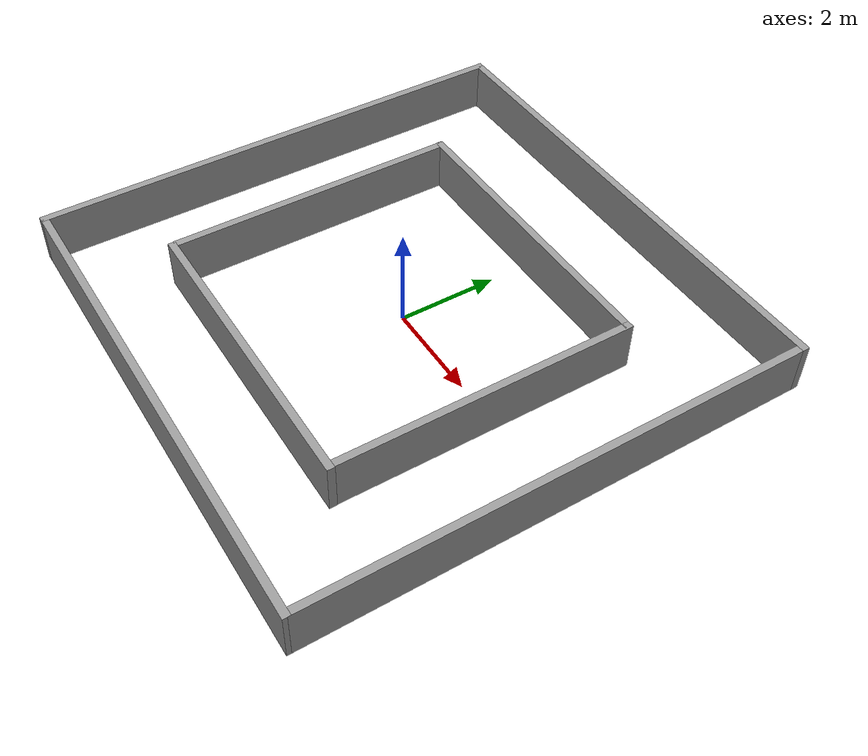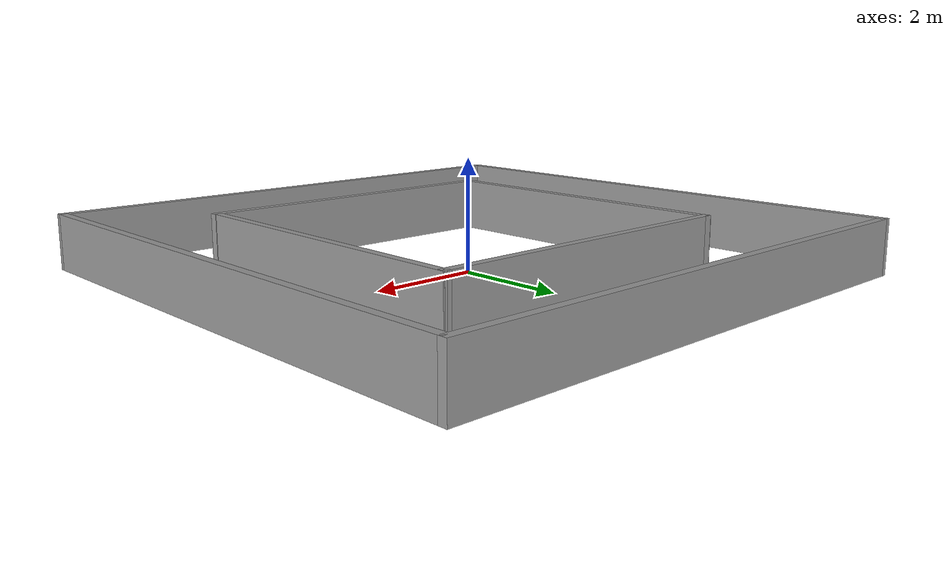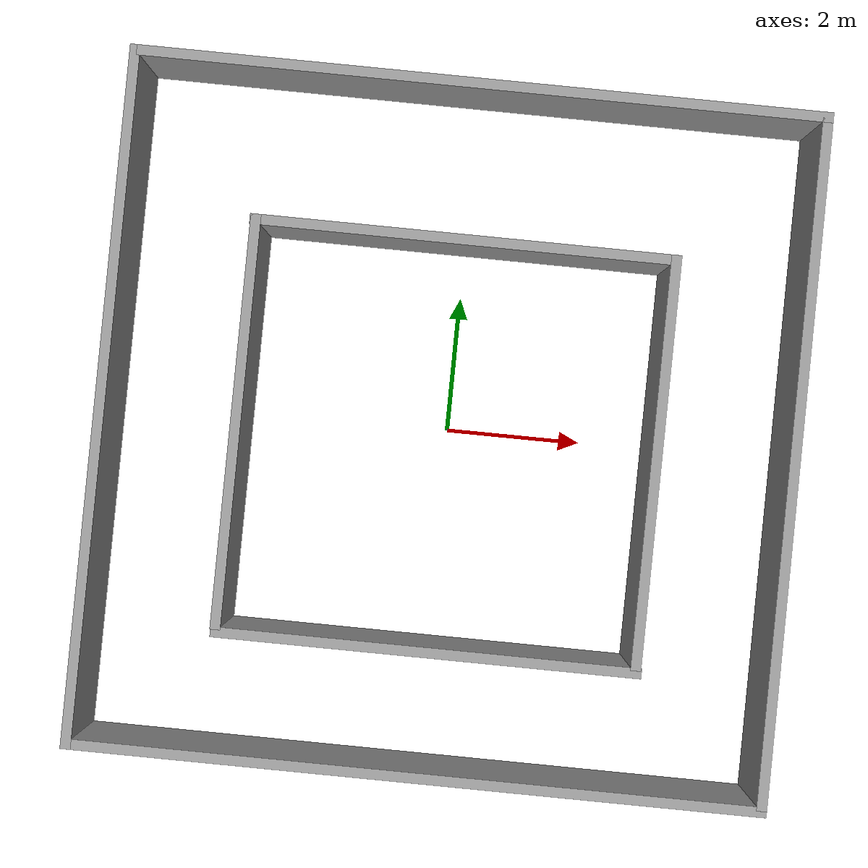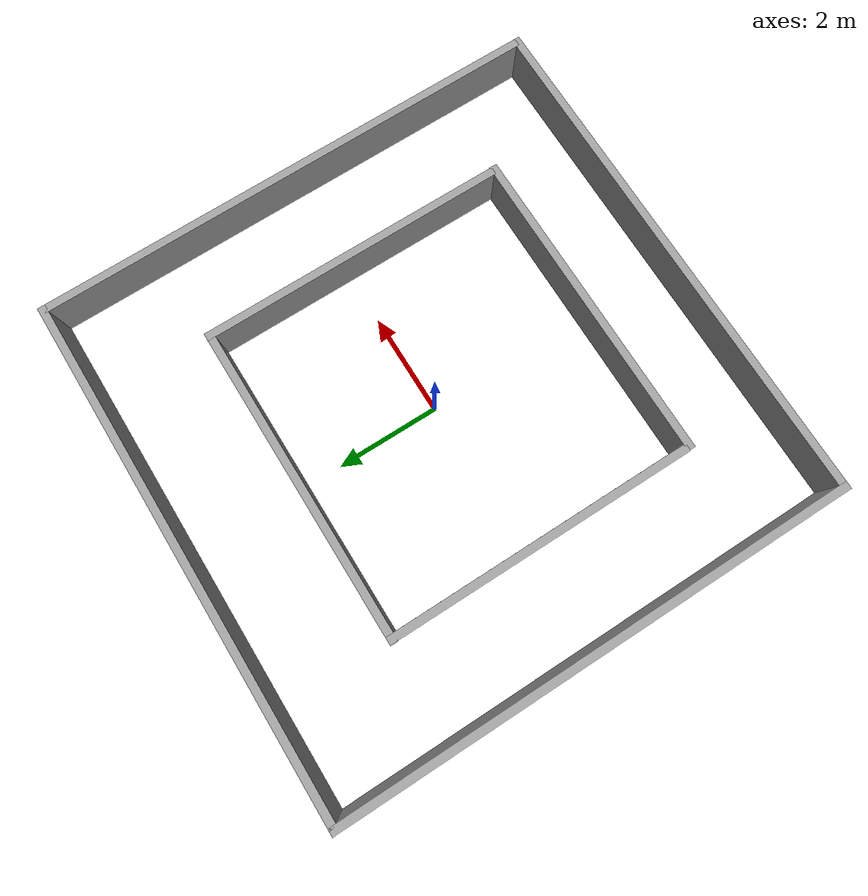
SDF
<?xml version='1.0'?>
<sdf version='1.5'>
  <model name='Circuit_ql_2'>
    <pose frame=''>0 0 0 0 -0 0</pose>
    <link name='Wall_0'>
      <collision name='Wall_0_Collision'>
        <geometry>
          <box>
            <size>10.15 0.15 1</size>
          </box>
        </geometry>
        <pose frame=''>0 0 0.5 0 -0 0</pose>
      </collision>
      <visual name='Wall_0_Visual'>
        <pose frame=''>0 0 0.5 0 -0 0</pose>
        <geometry>
          <box>
            <size>10.15 0.15 1</size>
          </box>
        </geometry>
        <material>
          <script>
            <uri>file://media/materials/scripts/gazebo.material</uri>
            <name>Gazebo/Grey</name>
          </script>
          <ambient>1 1 1 1</ambient>
        </material>
      </visual>
      <pose frame=''>-5 0 0 0 0 -1.5708</pose>
    </link>
    <link name='Wall_11'>
      <collision name='Wall_11_Collision'>
        <geometry>
          <box>
            <size>5.98502 0.15 1</size>
          </box>
        </geometry>
        <pose frame=''>0 0 0.5 0 -0 0</pose>
      </collision>
      <visual name='Wall_11_Visual'>
        <pose frame=''>0 0 0.5 0 -0 0</pose>
        <geometry>
          <box>
            <size>5.98502 0.15 1</size>
          </box>
        </geometry>
        <material>
          <script>
            <uri>file://media/materials/scripts/gazebo.material</uri>
            <name>Gazebo/Grey</name>
          </script>
          <ambient>1 1 1 1</ambient>
        </material>
      </visual>
      <pose frame=''>-3.036 -0.1735 0 0 0 -1.5708</pose>
    </link>
    <link name='Wall_14'>
      <collision name='Wall_14_Collision'>
        <geometry>
          <box>
            <size>6.2 0.15 1</size>
          </box>
        </geometry>
        <pose frame=''>0 0 0.5 0 -0 0</pose>
      </collision>
      <visual name='Wall_14_Visual'>
        <pose frame=''>0 0 0.5 0 -0 0</pose>
        <geometry>
          <box>
            <size>6.2 0.15 1</size>
          </box>
        </geometry>
        <material>
          <script>
            <uri>file://media/materials/scripts/gazebo.material</uri>
            <name>Gazebo/Grey</name>
          </script>
          <ambient>1 1 1 1</ambient>
        </material>
      </visual>
      <pose frame=''>0.0 -3.2 0 0 -0 0</pose>
    </link>
    <link name='Wall_15'>
      <collision name='Wall_15_Collision'>
        <geometry>
          <box>
            <size>5.98502 0.15 1</size>
          </box>
        </geometry>
        <pose frame=''>0 0 0.5 0 -0 0</pose>
      </collision>
      <visual name='Wall_15_Visual'>
        <pose frame=''>0 0 0.5 0 -0 0</pose>
        <geometry>
          <box>
            <size>5.98502 0.15 1</size>
          </box>
        </geometry>
        <material>
          <script>
            <uri>file://media/materials/scripts/gazebo.material</uri>
            <name>Gazebo/Grey</name>
          </script>
          <ambient>1 1 1 1</ambient>
        </material>
      </visual>
      <pose frame=''>3.0215 -0.1735 0 0 -0 1.56823</pose>
    </link>
    <link name='Wall_16'>
      <collision name='Wall_16_Collision'>
        <geometry>
          <box>
            <size>6.2 0.15 1</size>
          </box>
        </geometry>
        <pose frame=''>0 0 0.5 0 -0 0</pose>
      </collision>
      <visual name='Wall_16_Visual'>
        <pose frame=''>0 0 0.5 0 -0 0</pose>
        <geometry>
          <box>
            <size>6.2 0.15 1</size>
          </box>
        </geometry>
        <material>
          <script>
            <uri>file://media/materials/scripts/gazebo.material</uri>
            <name>Gazebo/Grey</name>
          </script>
          <ambient>1 1 1 1</ambient>
        </material>
      </visual>
      <pose frame=''>-0.02 2.744 0 0 -0 3.14159</pose>
    </link>
    <link name='Wall_3'>
      <collision name='Wall_3_Collision'>
        <geometry>
          <box>
            <size>10.05 0.15 1</size>
          </box>
        </geometry>
        <pose frame=''>0 0 0.5 0 -0 0</pose>
      </collision>
      <visual name='Wall_3_Visual'>
        <pose frame=''>0 0 0.5 0 -0 0</pose>
        <geometry>
          <box>
            <size>10.05 0.15 1</size>
          </box>
        </geometry>
        <material>
          <script>
            <uri>file://media/materials/scripts/gazebo.material</uri>
            <name>Gazebo/Grey</name>
          </script>
          <ambient>1 1 1 1</ambient>
        </material>
      </visual>
      <pose frame=''>0.05 -5 0 0 -0 0</pose>
    </link>
    <link name='Wall_7'>
      <collision name='Wall_7_Collision'>
        <geometry>
          <box>
            <size>9.975 0.15 1</size>
          </box>
        </geometry>
        <pose frame=''>0 0 0.5 0 -0 0</pose>
      </collision>
      <visual name='Wall_7_Visual'>
        <pose frame=''>0 0 0.5 0 -0 0</pose>
        <geometry>
          <box>
            <size>9.975 0.15 1</size>
          </box>
        </geometry>
        <material>
          <script>
            <uri>file://media/materials/scripts/gazebo.material</uri>
            <name>Gazebo/Grey</name>
          </script>
          <ambient>1 1 1 1</ambient>
        </material>
      </visual>
      <pose frame=''>5 0 0 0 -0 1.5708</pose>
    </link>
    <link name='Wall_9'>
      <collision name='Wall_9_Collision'>
        <geometry>
          <box>
            <size>10.05 0.15 1</size>
          </box>
        </geometry>
        <pose frame=''>0 0 0.5 0 -0 0</pose>
      </collision>
      <visual name='Wall_9_Visual'>
        <pose frame=''>0 0 0.5 0 -0 0</pose>
        <geometry>
          <box>
            <size>10.05 0.15 1</size>
          </box>
        </geometry>
        <material>
          <script>
            <uri>file://media/materials/scripts/gazebo.material</uri>
            <name>Gazebo/Grey</name>
          </script>
          <ambient>1 1 1 1</ambient>
        </material>
      </visual>
      <pose frame=''>0.05 5 0 0 -0 3.14159</pose>
    </link>
    <static>1</static>
  </model>
</sdf>
